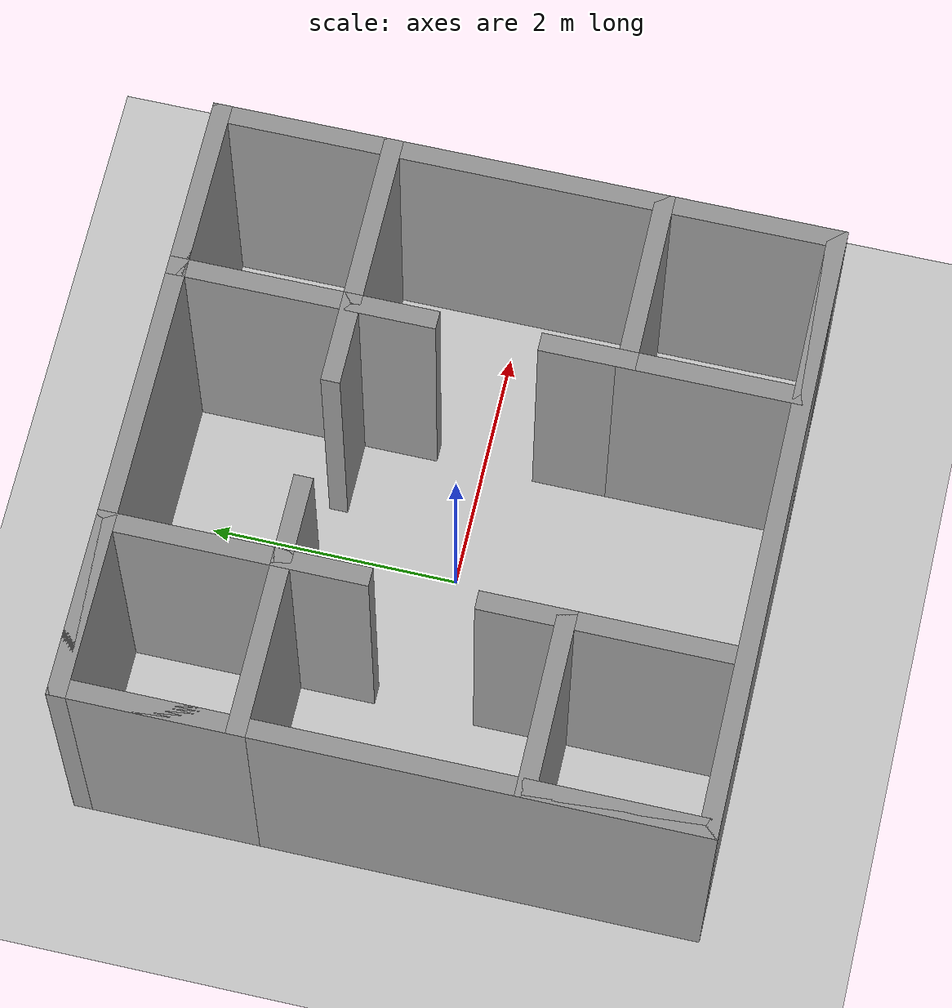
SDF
<sdf version="1.6">
 <world name="default">
  <light name="sun" type="directional">
   <pose>0 0 10 0 -0 0</pose>
   <diffuse>0.8 0.8 0.8 1</diffuse>
   <specular>0.2 0.2 0.2 1</specular>
   <attenuation>
    <range>1000</range>
    <constant>0.9</constant>
    <linear>0.01</linear>
    <quadratic>0.001</quadratic>
   </attenuation>
   <direction>-0.5 0.1 -0.9</direction>
  </light>
  <model name="ground_plane">
   <static>1</static>
   <link name="link">
    <collision name="collision">
     <geometry><plane><normal>0 0 1</normal><size>100 100</size></plane></geometry>
     <surface>
      <contact><collide_bitmask>65535</collide_bitmask></contact>
      <friction><ode><mu>100</mu><mu2>50</mu2></ode></friction>
     </surface>
    </collision>
    <visual name="visual">
     <cast_shadows>0</cast_shadows>
     <geometry><plane><normal>0 0 1</normal><size>100 100</size></plane></geometry>
     <material>
      <script><uri>file://media/materials/scripts/gazebo.material</uri><name>Gazebo/Grey</name></script>
     </material>
    </visual>
   </link>
  </model>
  <gravity>0 0 -9.8</gravity>
  <magnetic_field>6e-06 2.3e-05 -4.2e-05</magnetic_field>
  <atmosphere type="adiabatic"/>
  <physics name="default_physics" default="0" type="ode">
   <max_step_size>0.001</max_step_size>
   <real_time_factor>1</real_time_factor>
   <real_time_update_rate>1000</real_time_update_rate>
  </physics>
  <scene><ambient>0.4 0.4 0.4 1</ambient><background>0.7 0.7 0.7 1</background><shadows>1</shadows></scene>
  <spherical_coordinates>
   <surface_model>EARTH_WGS84</surface_model>
   <latitude_deg>0</latitude_deg>
   <longitude_deg>0</longitude_deg>
   <elevation>0</elevation>
   <heading_deg>0</heading_deg>
  </spherical_coordinates>
  <model name="train_ma_07">
   <link name="Wall_10">
    <collision name="Wall_10_Collision">
     <geometry><box><size>1.5 0.15 2.5</size></box></geometry>
     <pose>0 0 1.25 0 -0 0</pose>
    </collision>
    <visual name="Wall_10_Visual">
     <pose>0 0 1.25 0 -0 0</pose>
     <geometry><box><size>1.5 0.15 2.5</size></box></geometry>
     <material>
      <script><uri>file://media/materials/scripts/gazebo.material</uri><name>Gazebo/Grey</name></script>
      <ambient>1 1 1 1</ambient>
     </material>
     <meta><layer>0</layer></meta>
    </visual>
    <pose>-1.75 1.075 0 0 -0 0</pose>
   </link>
   <link name="Wall_11">
    <collision name="Wall_11_Collision">
     <geometry><box><size>0.75 0.15 2.5</size></box></geometry>
     <pose>0 0 1.25 0 -0 0</pose>
    </collision>
    <visual name="Wall_11_Visual">
     <pose>0 0 1.25 0 -0 0</pose>
     <geometry><box><size>0.75 0.15 2.5</size></box></geometry>
     <material>
      <script><uri>file://media/materials/scripts/gazebo.material</uri><name>Gazebo/Grey</name></script>
      <ambient>1 1 1 1</ambient>
     </material>
     <meta><layer>0</layer></meta>
    </visual>
    <pose>-1.075 0.775 0 0 0 -1.5708</pose>
   </link>
   <link name="Wall_18">
    <collision name="Wall_18_Collision">
     <geometry><box><size>1.5 0.15 2.5</size></box></geometry>
     <pose>0 0 1.25 0 -0 0</pose>
    </collision>
    <visual name="Wall_18_Visual">
     <pose>0 0 1.25 0 -0 0</pose>
     <geometry><box><size>1.5 0.15 2.5</size></box></geometry>
     <material>
      <script><uri>file://media/materials/scripts/gazebo.material</uri><name>Gazebo/Grey</name></script>
      <ambient>1 1 1 1</ambient>
     </material>
     <meta><layer>0</layer></meta>
    </visual>
    <pose>-2.425 -1.75 0 0 -0 1.5708</pose>
   </link>
   <link name="Wall_19">
    <collision name="Wall_19_Collision">
     <geometry><box><size>1.5 0.15 2.5</size></box></geometry>
     <pose>0 0 1.25 0 -0 0</pose>
    </collision>
    <visual name="Wall_19_Visual">
     <pose>0 0 1.25 0 -0 0</pose>
     <geometry><box><size>1.5 0.15 2.5</size></box></geometry>
     <material>
      <script><uri>file://media/materials/scripts/gazebo.material</uri><name>Gazebo/Grey</name></script>
      <ambient>1 1 1 1</ambient>
     </material>
     <meta><layer>0</layer></meta>
    </visual>
    <pose>-1.75 -1.075 0 0 -0 0</pose>
   </link>
   <link name="Wall_20">
    <collision name="Wall_20_Collision">
     <geometry><box><size>0.75 0.15 2.5</size></box></geometry>
     <pose>0 0 1.25 0 -0 0</pose>
    </collision>
    <visual name="Wall_20_Visual">
     <pose>0 0 1.25 0 -0 0</pose>
     <geometry><box><size>0.75 0.15 2.5</size></box></geometry>
     <material>
      <script><uri>file://media/materials/scripts/gazebo.material</uri><name>Gazebo/Grey</name></script>
      <ambient>1 1 1 1</ambient>
     </material>
     <meta><layer>0</layer></meta>
    </visual>
    <pose>-1.075 -0.775 0 0 -0 1.5708</pose>
   </link>
   <link name="Wall_22">
    <collision name="Wall_22_Collision">
     <geometry><box><size>1.5 0.15 2.5</size></box></geometry>
     <pose>0 0 1.25 0 -0 0</pose>
    </collision>
    <visual name="Wall_22_Visual">
     <pose>0 0 1.25 0 -0 0</pose>
     <geometry><box><size>1.5 0.15 2.5</size></box></geometry>
     <material>
      <script><uri>file://media/materials/scripts/gazebo.material</uri><name>Gazebo/Grey</name></script>
      <ambient>1 1 1 1</ambient>
     </material>
     <meta><layer>0</layer></meta>
    </visual>
    <pose>-1.75 2.425 0 0 -0 0</pose>
   </link>
   <link name="Wall_23">
    <collision name="Wall_23_Collision">
     <geometry><box><size>1.5 0.15 2.5</size></box></geometry>
     <pose>0 0 1.25 0 -0 0</pose>
    </collision>
    <visual name="Wall_23_Visual">
     <pose>0 0 1.25 0 -0 0</pose>
     <geometry><box><size>1.5 0.15 2.5</size></box></geometry>
     <material>
      <script><uri>file://media/materials/scripts/gazebo.material</uri><name>Gazebo/Grey</name></script>
      <ambient>1 1 1 1</ambient>
     </material>
     <meta><layer>0</layer></meta>
    </visual>
    <pose>-1.075 1.75 0 0 0 -1.5708</pose>
   </link>
   <link name="Wall_24">
    <collision name="Wall_24_Collision">
     <geometry><box><size>0.75 0.15 2.5</size></box></geometry>
     <pose>0 0 1.25 0 -0 0</pose>
    </collision>
    <visual name="Wall_24_Visual">
     <pose>0 0 1.25 0 -0 0</pose>
     <geometry><box><size>0.75 0.15 2.5</size></box></geometry>
     <material>
      <script><uri>file://media/materials/scripts/gazebo.material</uri><name>Gazebo/Grey</name></script>
      <ambient>1 1 1 1</ambient>
     </material>
     <meta><layer>0</layer></meta>
    </visual>
    <pose>-0.775 1.075 0 0 -0 0</pose>
   </link>
   <link name="Wall_26">
    <collision name="Wall_26_Collision">
     <geometry><box><size>1.5 0.15 2.5</size></box></geometry>
     <pose>0 0 1.25 0 -0 0</pose>
    </collision>
    <visual name="Wall_26_Visual">
     <pose>0 0 1.25 0 -0 0</pose>
     <geometry><box><size>1.5 0.15 2.5</size></box></geometry>
     <material>
      <script><uri>file://media/materials/scripts/gazebo.material</uri><name>Gazebo/Grey</name></script>
      <ambient>1 1 1 1</ambient>
     </material>
     <meta><layer>0</layer></meta>
    </visual>
    <pose>1.75 2.425 0 0 -0 3.14159</pose>
   </link>
   <link name="Wall_27">
    <collision name="Wall_27_Collision">
     <geometry><box><size>1.51 0.15 2.5</size></box></geometry>
     <pose>0 0 1.25 0 -0 0</pose>
    </collision>
    <visual name="Wall_27_Visual">
     <pose>0 0 1.25 0 -0 0</pose>
     <geometry><box><size>1.51 0.15 2.5</size></box></geometry>
     <material>
      <script><uri>file://media/materials/scripts/gazebo.material</uri><name>Gazebo/Grey</name></script>
      <ambient>1 1 1 1</ambient>
     </material>
     <meta><layer>0</layer></meta>
    </visual>
    <pose>1.075 1.745 0 0 0 -1.5708</pose>
   </link>
   <link name="Wall_28">
    <collision name="Wall_28_Collision">
     <geometry><box><size>0.75 0.15 2.5</size></box></geometry>
     <pose>0 0 1.25 0 -0 0</pose>
    </collision>
    <visual name="Wall_28_Visual">
     <pose>0 0 1.25 0 -0 0</pose>
     <geometry><box><size>0.75 0.15 2.5</size></box></geometry>
     <material>
      <script><uri>file://media/materials/scripts/gazebo.material</uri><name>Gazebo/Grey</name></script>
      <ambient>1 1 1 1</ambient>
     </material>
     <meta><layer>0</layer></meta>
    </visual>
    <pose>0.775 1.065 0 0 -0 3.14159</pose>
   </link>
   <link name="Wall_3">
    <collision name="Wall_3_Collision">
     <geometry><box><size>5 0.15 2.5</size></box></geometry>
     <pose>0 0 1.25 0 -0 0</pose>
    </collision>
    <visual name="Wall_3_Visual">
     <pose>0 0 1.25 0 -0 0</pose>
     <geometry><box><size>5 0.15 2.5</size></box></geometry>
     <material>
      <script><uri>file://media/materials/scripts/gazebo.material</uri><name>Gazebo/Grey</name></script>
      <ambient>1 1 1 1</ambient>
     </material>
     <meta><layer>0</layer></meta>
    </visual>
    <pose>-2.425 0 0 0 0 -1.5708</pose>
   </link>
   <link name="Wall_32">
    <collision name="Wall_32_Collision">
     <geometry><box><size>0.75 0.15 2.5</size></box></geometry>
     <pose>0 0 1.25 0 -0 0</pose>
    </collision>
    <visual name="Wall_32_Visual">
     <pose>0 0 1.25 0 -0 0</pose>
     <geometry><box><size>0.75 0.15 2.5</size></box></geometry>
     <material>
      <script><uri>file://media/materials/scripts/gazebo.material</uri><name>Gazebo/Grey</name></script>
      <ambient>1 1 1 1</ambient>
     </material>
     <meta><layer>0</layer></meta>
    </visual>
    <pose>1.075 0.765 0 0 0 -1.5708</pose>
   </link>
   <link name="Wall_34">
    <collision name="Wall_34_Collision">
     <geometry><box><size>1.5 0.15 2.5</size></box></geometry>
     <pose>0 0 1.25 0 -0 0</pose>
    </collision>
    <visual name="Wall_34_Visual">
     <pose>0 0 1.25 0 -0 0</pose>
     <geometry><box><size>1.5 0.15 2.5</size></box></geometry>
     <material>
      <script><uri>file://media/materials/scripts/gazebo.material</uri><name>Gazebo/Grey</name></script>
      <ambient>1 1 1 1</ambient>
     </material>
     <meta><layer>0</layer></meta>
    </visual>
    <pose>1.75 -2.425 0 0 -0 3.14159</pose>
   </link>
   <link name="Wall_35">
    <collision name="Wall_35_Collision">
     <geometry><box><size>1.5 0.15 2.5</size></box></geometry>
     <pose>0 0 1.25 0 -0 0</pose>
    </collision>
    <visual name="Wall_35_Visual">
     <pose>0 0 1.25 0 -0 0</pose>
     <geometry><box><size>1.5 0.15 2.5</size></box></geometry>
     <material>
      <script><uri>file://media/materials/scripts/gazebo.material</uri><name>Gazebo/Grey</name></script>
      <ambient>1 1 1 1</ambient>
     </material>
     <meta><layer>0</layer></meta>
    </visual>
    <pose>1.075 -1.75 0 0 -0 1.5708</pose>
   </link>
   <link name="Wall_4">
    <collision name="Wall_4_Collision">
     <geometry><box><size>5 0.15 2.5</size></box></geometry>
     <pose>0 0 1.25 0 -0 0</pose>
    </collision>
    <visual name="Wall_4_Visual">
     <pose>0 0 1.25 0 -0 0</pose>
     <geometry><box><size>5 0.15 2.5</size></box></geometry>
     <material>
      <script><uri>file://media/materials/scripts/gazebo.material</uri><name>Gazebo/Grey</name></script>
      <ambient>1 1 1 1</ambient>
     </material>
     <meta><layer>0</layer></meta>
    </visual>
    <pose>0 -2.425 0 0 -0 0</pose>
   </link>
   <link name="Wall_41">
    <collision name="Wall_41_Collision">
     <geometry><box><size>0.75 0.15 2.5</size></box></geometry>
     <pose>0 0 1.25 0 -0 0</pose>
    </collision>
    <visual name="Wall_41_Visual">
     <pose>0 0 1.25 0 -0 0</pose>
     <geometry><box><size>0.75 0.15 2.5</size></box></geometry>
     <material>
      <script><uri>file://media/materials/scripts/gazebo.material</uri><name>Gazebo/Grey</name></script>
      <ambient>1 1 1 1</ambient>
     </material>
     <meta><layer>0</layer></meta>
    </visual>
    <pose>1.075 -0.775 0 0 -0 1.5708</pose>
   </link>
   <link name="Wall_43">
    <collision name="Wall_43_Collision">
     <geometry><box><size>1.5 0.15 2.5</size></box></geometry>
     <pose>0 0 1.25 0 -0 0</pose>
    </collision>
    <visual name="Wall_43_Visual">
     <pose>0 0 1.25 0 -0 0</pose>
     <geometry><box><size>1.5 0.15 2.5</size></box></geometry>
     <material>
      <script><uri>file://media/materials/scripts/gazebo.material</uri><name>Gazebo/Grey</name></script>
      <ambient>1 1 1 1</ambient>
     </material>
     <meta><layer>0</layer></meta>
    </visual>
    <pose>1.75 1.065 0 0 -0 0</pose>
   </link>
   <link name="Wall_45">
    <collision name="Wall_45_Collision">
     <geometry><box><size>1.5 0.15 2.5</size></box></geometry>
     <pose>0 0 1.25 0 -0 0</pose>
    </collision>
    <visual name="Wall_45_Visual">
     <pose>0 0 1.25 0 -0 0</pose>
     <geometry><box><size>1.5 0.15 2.5</size></box></geometry>
     <material>
      <script><uri>file://media/materials/scripts/gazebo.material</uri><name>Gazebo/Grey</name></script>
      <ambient>1 1 1 1</ambient>
     </material>
     <meta><layer>0</layer></meta>
    </visual>
    <pose>1.75 -1.075 0 0 -0 0</pose>
   </link>
   <link name="Wall_47">
    <collision name="Wall_47_Collision">
     <geometry><box><size>1.5 0.15 2.5</size></box></geometry>
     <pose>0 0 1.25 0 -0 0</pose>
    </collision>
    <visual name="Wall_47_Visual">
     <pose>0 0 1.25 0 -0 0</pose>
     <geometry><box><size>1.5 0.15 2.5</size></box></geometry>
     <material>
      <script><uri>file://media/materials/scripts/gazebo.material</uri><name>Gazebo/Grey</name></script>
      <ambient>1 1 1 1</ambient>
     </material>
     <meta><layer>0</layer></meta>
    </visual>
    <pose>-1.075 -1.75 0 0 0 -1.5708</pose>
   </link>
   <link name="Wall_5">
    <collision name="Wall_5_Collision">
     <geometry><box><size>5 0.15 2.5</size></box></geometry>
     <pose>0 0 1.25 0 -0 0</pose>
    </collision>
    <visual name="Wall_5_Visual">
     <pose>0 0 1.25 0 -0 0</pose>
     <geometry><box><size>5 0.15 2.5</size></box></geometry>
     <material>
      <script><uri>file://media/materials/scripts/gazebo.material</uri><name>Gazebo/Grey</name></script>
      <ambient>1 1 1 1</ambient>
     </material>
     <meta><layer>0</layer></meta>
    </visual>
    <pose>2.425 0 0 0 -0 1.5708</pose>
   </link>
   <link name="Wall_6">
    <collision name="Wall_6_Collision">
     <geometry><box><size>5 0.15 2.5</size></box></geometry>
     <pose>0 0 1.25 0 -0 0</pose>
    </collision>
    <visual name="Wall_6_Visual">
     <pose>0 0 1.25 0 -0 0</pose>
     <geometry><box><size>5 0.15 2.5</size></box></geometry>
     <material>
      <script><uri>file://media/materials/scripts/gazebo.material</uri><name>Gazebo/Grey</name></script>
      <ambient>1 1 1 1</ambient>
     </material>
     <meta><layer>0</layer></meta>
    </visual>
    <pose>0 2.425 0 0 -0 3.14159</pose>
   </link>
   <link name="Wall_9">
    <collision name="Wall_9_Collision">
     <geometry><box><size>1.5 0.15 2.5</size></box></geometry>
     <pose>0 0 1.25 0 -0 0</pose>
    </collision>
    <visual name="Wall_9_Visual">
     <pose>0 0 1.25 0 -0 0</pose>
     <geometry><box><size>1.5 0.15 2.5</size></box></geometry>
     <material>
      <script><uri>file://media/materials/scripts/gazebo.material</uri><name>Gazebo/Grey</name></script>
      <ambient>1 1 1 1</ambient>
     </material>
     <meta><layer>0</layer></meta>
    </visual>
    <pose>-2.425 1.75 0 0 0 -1.5708</pose>
   </link>
   <static>1</static>
  </model>
 </world>
</sdf>
